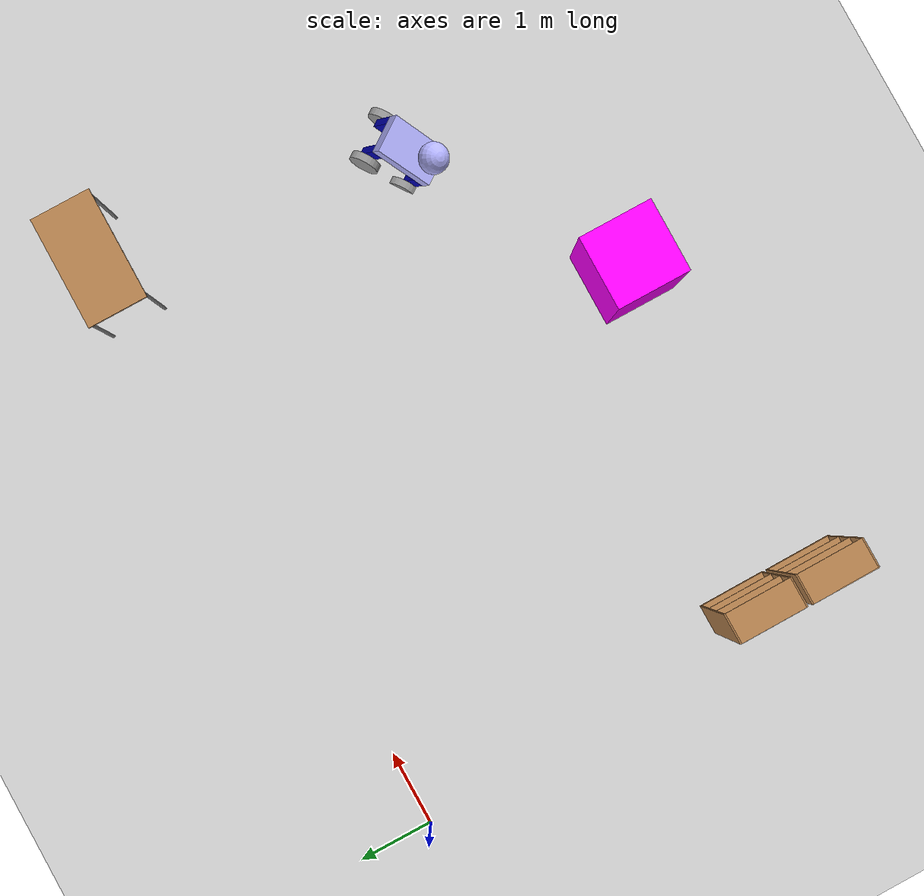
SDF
<sdf version="1.6">
 <world name="default">
  <model name="ground_plane">
   <static>1</static>
   <link name="link">
    <collision name="collision">
     <geometry><plane><normal>0 0 1</normal><size>100 100</size></plane></geometry>
     <surface><friction><ode><mu>100</mu><mu2>50</mu2></ode></friction></surface>
    </collision>
    <visual name="visual">
     <cast_shadows>0</cast_shadows>
     <geometry><plane><normal>0 0 1</normal><size>100 100</size></plane></geometry>
     <material>
      <script><uri>file://media/materials/scripts/gazebo.material</uri><name>Gazebo/Grey</name></script>
     </material>
    </visual>
   </link>
  </model>
  <model name="bookshelf">
   <static>1</static>
   <link name="link">
    <inertial><mass>1</mass></inertial>
    <collision name="back">
     <pose>0 0.005 0.6 0 -0 0</pose>
     <geometry><box><size>0.9 0.01 1.2</size></box></geometry>
    </collision>
    <visual name="visual1">
     <pose>0 0.005 0.6 0 -0 0</pose>
     <geometry><box><size>0.9 0.01 1.2</size></box></geometry>
     <material>
      <script><uri>file://media/materials/scripts/gazebo.material</uri><name>Gazebo/Wood</name></script>
     </material>
    </visual>
    <collision name="left_side">
     <pose>0.45 -0.195 0.6 0 -0 0</pose>
     <geometry><box><size>0.02 0.4 1.2</size></box></geometry>
    </collision>
    <visual name="visual2">
     <pose>0.45 -0.195 0.6 0 -0 0</pose>
     <geometry><box><size>0.02 0.4 1.2</size></box></geometry>
     <material>
      <script><uri>file://media/materials/scripts/gazebo.material</uri><name>Gazebo/Wood</name></script>
     </material>
    </visual>
    <collision name="right_side">
     <pose>-0.45 -0.195 0.6 0 -0 0</pose>
     <geometry><box><size>0.02 0.4 1.2</size></box></geometry>
    </collision>
    <visual name="visual3">
     <pose>-0.45 -0.195 0.6 0 -0 0</pose>
     <geometry><box><size>0.02 0.4 1.2</size></box></geometry>
     <material>
      <script><uri>file://media/materials/scripts/gazebo.material</uri><name>Gazebo/Wood</name></script>
     </material>
    </visual>
    <collision name="bottom">
     <pose>0 -0.195 0.03 0 -0 0</pose>
     <geometry><box><size>0.88 0.4 0.06</size></box></geometry>
    </collision>
    <visual name="visual4">
     <pose>0 -0.195 0.03 0 -0 0</pose>
     <geometry><box><size>0.88 0.4 0.06</size></box></geometry>
     <material>
      <script><uri>file://media/materials/scripts/gazebo.material</uri><name>Gazebo/Wood</name></script>
     </material>
    </visual>
    <collision name="top">
     <pose>0 -0.195 1.19 0 -0 0</pose>
     <geometry><box><size>0.88 0.4 0.02</size></box></geometry>
    </collision>
    <visual name="visual5">
     <pose>0 -0.195 1.19 0 -0 0</pose>
     <geometry><box><size>0.88 0.4 0.02</size></box></geometry>
     <material>
      <script><uri>file://media/materials/scripts/gazebo.material</uri><name>Gazebo/Wood</name></script>
     </material>
    </visual>
    <collision name="low_shelf">
     <pose>0 -0.195 0.43 0 -0 0</pose>
     <geometry><box><size>0.88 0.4 0.02</size></box></geometry>
    </collision>
    <visual name="visual6">
     <pose>0 -0.195 0.43 0 -0 0</pose>
     <geometry><box><size>0.88 0.4 0.02</size></box></geometry>
     <material>
      <script><uri>file://media/materials/scripts/gazebo.material</uri><name>Gazebo/Wood</name></script>
     </material>
    </visual>
    <collision name="high_shelf">
     <pose>0 -0.195 0.8 0 -0 0</pose>
     <geometry><box><size>0.88 0.4 0.02</size></box></geometry>
    </collision>
    <visual name="visual7">
     <pose>0 -0.195 0.8 0 -0 0</pose>
     <geometry><box><size>0.88 0.4 0.02</size></box></geometry>
     <material>
      <script><uri>file://media/materials/scripts/gazebo.material</uri><name>Gazebo/Wood</name></script>
     </material>
    </visual>
   </link>
   <pose>0.371342 -5.8152 0 0 -0 1.57628</pose>
  </model>
  <model name="bookshelf_clone">
   <static>1</static>
   <link name="link">
    <inertial><mass>1</mass></inertial>
    <collision name="back">
     <pose>0 0.005 0.6 0 -0 0</pose>
     <geometry><box><size>0.9 0.01 1.2</size></box></geometry>
    </collision>
    <visual name="visual1">
     <pose>0 0.005 0.6 0 -0 0</pose>
     <geometry><box><size>0.9 0.01 1.2</size></box></geometry>
     <material>
      <script><uri>file://media/materials/scripts/gazebo.material</uri><name>Gazebo/Wood</name></script>
     </material>
    </visual>
    <collision name="left_side">
     <pose>0.45 -0.195 0.6 0 -0 0</pose>
     <geometry><box><size>0.02 0.4 1.2</size></box></geometry>
    </collision>
    <visual name="visual2">
     <pose>0.45 -0.195 0.6 0 -0 0</pose>
     <geometry><box><size>0.02 0.4 1.2</size></box></geometry>
     <material>
      <script><uri>file://media/materials/scripts/gazebo.material</uri><name>Gazebo/Wood</name></script>
     </material>
    </visual>
    <collision name="right_side">
     <pose>-0.45 -0.195 0.6 0 -0 0</pose>
     <geometry><box><size>0.02 0.4 1.2</size></box></geometry>
    </collision>
    <visual name="visual3">
     <pose>-0.45 -0.195 0.6 0 -0 0</pose>
     <geometry><box><size>0.02 0.4 1.2</size></box></geometry>
     <material>
      <script><uri>file://media/materials/scripts/gazebo.material</uri><name>Gazebo/Wood</name></script>
     </material>
    </visual>
    <collision name="bottom">
     <pose>0 -0.195 0.03 0 -0 0</pose>
     <geometry><box><size>0.88 0.4 0.06</size></box></geometry>
    </collision>
    <visual name="visual4">
     <pose>0 -0.195 0.03 0 -0 0</pose>
     <geometry><box><size>0.88 0.4 0.06</size></box></geometry>
     <material>
      <script><uri>file://media/materials/scripts/gazebo.material</uri><name>Gazebo/Wood</name></script>
     </material>
    </visual>
    <collision name="top">
     <pose>0 -0.195 1.19 0 -0 0</pose>
     <geometry><box><size>0.88 0.4 0.02</size></box></geometry>
    </collision>
    <visual name="visual5">
     <pose>0 -0.195 1.19 0 -0 0</pose>
     <geometry><box><size>0.88 0.4 0.02</size></box></geometry>
     <material>
      <script><uri>file://media/materials/scripts/gazebo.material</uri><name>Gazebo/Wood</name></script>
     </material>
    </visual>
    <collision name="low_shelf">
     <pose>0 -0.195 0.43 0 -0 0</pose>
     <geometry><box><size>0.88 0.4 0.02</size></box></geometry>
    </collision>
    <visual name="visual6">
     <pose>0 -0.195 0.43 0 -0 0</pose>
     <geometry><box><size>0.88 0.4 0.02</size></box></geometry>
     <material>
      <script><uri>file://media/materials/scripts/gazebo.material</uri><name>Gazebo/Wood</name></script>
     </material>
    </visual>
    <collision name="high_shelf">
     <pose>0 -0.195 0.8 0 -0 0</pose>
     <geometry><box><size>0.88 0.4 0.02</size></box></geometry>
    </collision>
    <visual name="visual7">
     <pose>0 -0.195 0.8 0 -0 0</pose>
     <geometry><box><size>0.88 0.4 0.02</size></box></geometry>
     <material>
      <script><uri>file://media/materials/scripts/gazebo.material</uri><name>Gazebo/Wood</name></script>
     </material>
    </visual>
   </link>
   <pose>0.371025 -4.84526 0 0 -0 1.57628</pose>
  </model>
  <model name="table_0">
   <static>1</static>
   <link name="link">
    <collision name="surface">
     <pose>0 0 1 0 -0 0</pose>
     <geometry><box><size>1.5 0.8 0.03</size></box></geometry>
     <surface><friction><ode><mu>0.6</mu><mu2>0.6</mu2></ode></friction></surface>
    </collision>
    <visual name="visual1">
     <pose>0 0 1 0 -0 0</pose>
     <geometry><box><size>1.5 0.8 0.03</size></box></geometry>
     <material>
      <script><uri>file://media/materials/scripts/gazebo.material</uri><name>Gazebo/Wood</name></script>
     </material>
    </visual>
    <collision name="front_left_leg">
     <pose>0.68 0.38 0.5 0 -0 0</pose>
     <geometry><cylinder><radius>0.02</radius><length>1</length></cylinder></geometry>
    </collision>
    <visual name="front_left_leg">
     <pose>0.68 0.38 0.5 0 -0 0</pose>
     <geometry><cylinder><radius>0.02</radius><length>1</length></cylinder></geometry>
     <material>
      <script><uri>file://media/materials/scripts/gazebo.material</uri><name>Gazebo/Grey</name></script>
     </material>
    </visual>
    <collision name="front_right_leg">
     <pose>0.68 -0.38 0.5 0 -0 0</pose>
     <geometry><cylinder><radius>0.02</radius><length>1</length></cylinder></geometry>
    </collision>
    <visual name="front_right_leg">
     <pose>0.68 -0.38 0.5 0 -0 0</pose>
     <geometry><cylinder><radius>0.02</radius><length>1</length></cylinder></geometry>
     <material>
      <script><uri>file://media/materials/scripts/gazebo.material</uri><name>Gazebo/Grey</name></script>
     </material>
    </visual>
    <collision name="back_right_leg">
     <pose>-0.68 -0.38 0.5 0 -0 0</pose>
     <geometry><cylinder><radius>0.02</radius><length>1</length></cylinder></geometry>
    </collision>
    <visual name="back_right_leg">
     <pose>-0.68 -0.38 0.5 0 -0 0</pose>
     <geometry><cylinder><radius>0.02</radius><length>1</length></cylinder></geometry>
     <material>
      <script><uri>file://media/materials/scripts/gazebo.material</uri><name>Gazebo/Grey</name></script>
     </material>
    </visual>
    <collision name="back_left_leg">
     <pose>-0.68 0.38 0.5 0 -0 0</pose>
     <geometry><cylinder><radius>0.02</radius><length>1</length></cylinder></geometry>
    </collision>
    <visual name="back_left_leg">
     <pose>-0.68 0.38 0.5 0 -0 0</pose>
     <geometry><cylinder><radius>0.02</radius><length>1</length></cylinder></geometry>
     <material>
      <script><uri>file://media/materials/scripts/gazebo.material</uri><name>Gazebo/Grey</name></script>
     </material>
    </visual>
   </link>
   <pose>8.16 0.230612 0 0 -0 0</pose>
  </model>
  <model name="FourWheeledRobot_0">
   <link name="link_4">
    <pose>-0.345268 -0.160069 -0.216667 1.5707 -0 0</pose>
    <inertial>
     <mass>1</mass>
     <inertia><ixx>0.145833</ixx><ixy>0</ixy><ixz>0</ixz><iyy>0.145833</iyy><iyz>0</iyz><izz>0.125</izz></inertia>
    </inertial>
    <visual name="visual">
     <geometry><cylinder><radius>0.2</radius><length>0.1</length></cylinder></geometry>
     <material>
      <lighting>1</lighting>
      <script><uri>file://media/materials/scripts/gazebo.material</uri><name>Gazebo/Grey</name></script>
      <shader type="pixel"><normal_map>__default__</normal_map></shader>
      <ambient>0 0 0 1</ambient>
      <diffuse>0 0 0 1</diffuse>
      <specular>0 0 0 1</specular>
      <emissive>0 0 0 1</emissive>
     </material>
    </visual>
    <collision name="collision">
     <geometry><cylinder><radius>0.2</radius><length>0.1</length></cylinder></geometry>
     <surface>
      <friction>
       <ode><mu>1</mu><mu2>1</mu2><fdir1>0 0 0</fdir1><slip1>0</slip1><slip2>0</slip2></ode>
       <torsional>
        <coefficient>1</coefficient>
        <patch_radius>0</patch_radius>
        <surface_radius>0</surface_radius>
        <use_patch_radius>1</use_patch_radius>
        <ode><slip>0</slip></ode>
       </torsional>
      </friction>
      <bounce><restitution_coefficient>0</restitution_coefficient><threshold>1e+06</threshold></bounce>
      <contact>
       <collide_without_contact>0</collide_without_contact>
       <collide_without_contact_bitmask>1</collide_without_contact_bitmask>
       <collide_bitmask>1</collide_bitmask>
       <ode>
        <soft_cfm>0</soft_cfm>
        <soft_erp>0.2</soft_erp>
        <kp>1e+13</kp>
        <kd>1</kd>
        <max_vel>0.01</max_vel>
        <min_depth>0</min_depth>
       </ode>
       <bullet>
        <split_impulse>1</split_impulse>
        <split_impulse_penetration_threshold>-0.01</split_impulse_penetration_threshold>
        <soft_cfm>0</soft_cfm>
        <soft_erp>0.2</soft_erp>
        <kp>1e+13</kp>
        <kd>1</kd>
       </bullet>
      </contact>
     </surface>
    </collision>
   </link>
   <link name="link_4_clone">
    <pose>0.272232 -0.160069 -0.216668 1.5707 -0 0</pose>
    <inertial>
     <mass>1</mass>
     <inertia><ixx>0.145833</ixx><ixy>0</ixy><ixz>0</ixz><iyy>0.145833</iyy><iyz>0</iyz><izz>0.125</izz></inertia>
    </inertial>
    <visual name="visual">
     <geometry><cylinder><radius>0.2</radius><length>0.1</length></cylinder></geometry>
     <material>
      <lighting>1</lighting>
      <script><uri>file://media/materials/scripts/gazebo.material</uri><name>Gazebo/Grey</name></script>
      <shader type="pixel"><normal_map>__default__</normal_map></shader>
      <ambient>0 0 0 1</ambient>
      <diffuse>0 0 0 1</diffuse>
      <specular>0 0 0 1</specular>
      <emissive>0 0 0 1</emissive>
     </material>
    </visual>
    <collision name="collision">
     <geometry><cylinder><radius>0.2</radius><length>0.1</length></cylinder></geometry>
     <surface>
      <friction>
       <ode><mu>1</mu><mu2>1</mu2><fdir1>0 0 0</fdir1><slip1>0</slip1><slip2>0</slip2></ode>
       <torsional>
        <coefficient>1</coefficient>
        <patch_radius>0</patch_radius>
        <surface_radius>0</surface_radius>
        <use_patch_radius>1</use_patch_radius>
        <ode><slip>0</slip></ode>
       </torsional>
      </friction>
      <bounce><restitution_coefficient>0</restitution_coefficient><threshold>1e+06</threshold></bounce>
      <contact>
       <collide_without_contact>0</collide_without_contact>
       <collide_without_contact_bitmask>1</collide_without_contact_bitmask>
       <collide_bitmask>1</collide_bitmask>
       <ode>
        <soft_cfm>0</soft_cfm>
        <soft_erp>0.2</soft_erp>
        <kp>1e+13</kp>
        <kd>1</kd>
        <max_vel>0.01</max_vel>
        <min_depth>0</min_depth>
       </ode>
       <bullet>
        <split_impulse>1</split_impulse>
        <split_impulse_penetration_threshold>-0.01</split_impulse_penetration_threshold>
        <soft_cfm>0</soft_cfm>
        <soft_erp>0.2</soft_erp>
        <kp>1e+13</kp>
        <kd>1</kd>
       </bullet>
      </contact>
     </surface>
    </collision>
   </link>
   <link name="link_4_clone_0">
    <pose>-0.377768 0.43997 -0.216667 1.5707 -0 0</pose>
    <inertial>
     <mass>1</mass>
     <inertia><ixx>0.145833</ixx><ixy>0</ixy><ixz>0</ixz><iyy>0.145833</iyy><iyz>0</iyz><izz>0.125</izz></inertia>
    </inertial>
    <visual name="visual">
     <geometry><cylinder><radius>0.2</radius><length>0.1</length></cylinder></geometry>
     <material>
      <lighting>1</lighting>
      <script><uri>file://media/materials/scripts/gazebo.material</uri><name>Gazebo/Grey</name></script>
      <shader type="pixel"><normal_map>__default__</normal_map></shader>
      <ambient>0 0 0 1</ambient>
      <diffuse>0 0 0 1</diffuse>
      <specular>0 0 0 1</specular>
      <emissive>0 0 0 1</emissive>
     </material>
    </visual>
    <collision name="collision">
     <geometry><cylinder><radius>0.2</radius><length>0.1</length></cylinder></geometry>
     <surface>
      <friction>
       <ode><mu>1</mu><mu2>1</mu2><fdir1>0 0 0</fdir1><slip1>0</slip1><slip2>0</slip2></ode>
       <torsional>
        <coefficient>1</coefficient>
        <patch_radius>0</patch_radius>
        <surface_radius>0</surface_radius>
        <use_patch_radius>1</use_patch_radius>
        <ode><slip>0</slip></ode>
       </torsional>
      </friction>
      <bounce><restitution_coefficient>0</restitution_coefficient><threshold>1e+06</threshold></bounce>
      <contact>
       <collide_without_contact>0</collide_without_contact>
       <collide_without_contact_bitmask>1</collide_without_contact_bitmask>
       <collide_bitmask>1</collide_bitmask>
       <ode>
        <soft_cfm>0</soft_cfm>
        <soft_erp>0.2</soft_erp>
        <kp>1e+13</kp>
        <kd>1</kd>
        <max_vel>0.01</max_vel>
        <min_depth>0</min_depth>
       </ode>
       <bullet>
        <split_impulse>1</split_impulse>
        <split_impulse_penetration_threshold>-0.01</split_impulse_penetration_threshold>
        <soft_cfm>0</soft_cfm>
        <soft_erp>0.2</soft_erp>
        <kp>1e+13</kp>
        <kd>1</kd>
       </bullet>
      </contact>
     </surface>
    </collision>
   </link>
   <link name="link_4_clone_1">
    <pose>0.272232 0.43997 -0.216667 1.5707 -0 0</pose>
    <inertial>
     <mass>1</mass>
     <inertia><ixx>0.145833</ixx><ixy>0</ixy><ixz>0</ixz><iyy>0.145833</iyy><iyz>0</iyz><izz>0.125</izz></inertia>
    </inertial>
    <visual name="visual">
     <geometry><cylinder><radius>0.2</radius><length>0.1</length></cylinder></geometry>
     <material>
      <lighting>1</lighting>
      <script><uri>file://media/materials/scripts/gazebo.material</uri><name>Gazebo/Grey</name></script>
      <shader type="pixel"><normal_map>__default__</normal_map></shader>
      <ambient>0 0 0 1</ambient>
      <diffuse>0 0 0 1</diffuse>
      <specular>0 0 0 1</specular>
      <emissive>0 0 0 1</emissive>
     </material>
    </visual>
    <collision name="collision">
     <geometry><cylinder><radius>0.2</radius><length>0.1</length></cylinder></geometry>
     <surface>
      <friction>
       <ode><mu>1</mu><mu2>1</mu2><fdir1>0 0 0</fdir1><slip1>0</slip1><slip2>0</slip2></ode>
       <torsional>
        <coefficient>1</coefficient>
        <patch_radius>0</patch_radius>
        <surface_radius>0</surface_radius>
        <use_patch_radius>1</use_patch_radius>
        <ode><slip>0</slip></ode>
       </torsional>
      </friction>
      <bounce><restitution_coefficient>0</restitution_coefficient><threshold>1e+06</threshold></bounce>
      <contact>
       <collide_without_contact>0</collide_without_contact>
       <collide_without_contact_bitmask>1</collide_without_contact_bitmask>
       <collide_bitmask>1</collide_bitmask>
       <ode>
        <soft_cfm>0</soft_cfm>
        <soft_erp>0.2</soft_erp>
        <kp>1e+13</kp>
        <kd>1</kd>
        <max_vel>0.01</max_vel>
        <min_depth>0</min_depth>
       </ode>
       <bullet>
        <split_impulse>1</split_impulse>
        <split_impulse_penetration_threshold>-0.01</split_impulse_penetration_threshold>
        <soft_cfm>0</soft_cfm>
        <soft_erp>0.2</soft_erp>
        <kp>1e+13</kp>
        <kd>1</kd>
       </bullet>
      </contact>
     </surface>
    </collision>
   </link>
   <link name="link_5">
    <pose>-0.377768 -0.060049 -0.016667 0 -0 0</pose>
    <inertial>
     <mass>1</mass>
     <inertia>
      <ixx>0.166667</ixx>
      <ixy>0</ixy>
      <ixz>0</ixz>
      <iyy>0.166667</iyy>
      <iyz>0</iyz>
      <izz>0.166667</izz>
     </inertia>
    </inertial>
    <visual name="visual">
     <geometry><box><size>0.15 0.1 0.4</size></box></geometry>
     <material>
      <lighting>1</lighting>
      <script><uri>file://media/materials/scripts/gazebo.material</uri><name>Gazebo/Grey</name></script>
      <shader type="pixel"><normal_map>__default__</normal_map></shader>
      <ambient>0 0 1 1</ambient>
      <diffuse>0 0 0.7 1</diffuse>
      <specular>0 0 0.01 1</specular>
      <emissive>0 0 0 1</emissive>
     </material>
    </visual>
    <collision name="collision">
     <geometry><box><size>0.15 0.1 0.4</size></box></geometry>
     <surface>
      <friction>
       <ode><mu>1</mu><mu2>1</mu2><fdir1>0 0 0</fdir1><slip1>0</slip1><slip2>0</slip2></ode>
       <torsional>
        <coefficient>1</coefficient>
        <patch_radius>0</patch_radius>
        <surface_radius>0</surface_radius>
        <use_patch_radius>1</use_patch_radius>
        <ode><slip>0</slip></ode>
       </torsional>
      </friction>
      <bounce><restitution_coefficient>0</restitution_coefficient><threshold>1e+06</threshold></bounce>
      <contact>
       <collide_without_contact>0</collide_without_contact>
       <collide_without_contact_bitmask>1</collide_without_contact_bitmask>
       <collide_bitmask>1</collide_bitmask>
       <ode>
        <soft_cfm>0</soft_cfm>
        <soft_erp>0.2</soft_erp>
        <kp>1e+13</kp>
        <kd>1</kd>
        <max_vel>0.01</max_vel>
        <min_depth>0</min_depth>
       </ode>
       <bullet>
        <split_impulse>1</split_impulse>
        <split_impulse_penetration_threshold>-0.01</split_impulse_penetration_threshold>
        <soft_cfm>0</soft_cfm>
        <soft_erp>0.2</soft_erp>
        <kp>1e+13</kp>
        <kd>1</kd>
       </bullet>
      </contact>
     </surface>
    </collision>
   </link>
   <link name="link_5_clone">
    <pose>-0.377768 0.339951 -0.016667 0 -0 0</pose>
    <inertial>
     <mass>1</mass>
     <inertia>
      <ixx>0.166667</ixx>
      <ixy>0</ixy>
      <ixz>0</ixz>
      <iyy>0.166667</iyy>
      <iyz>0</iyz>
      <izz>0.166667</izz>
     </inertia>
    </inertial>
    <visual name="visual">
     <geometry><box><size>0.15 0.1 0.4</size></box></geometry>
     <material>
      <lighting>1</lighting>
      <script><uri>file://media/materials/scripts/gazebo.material</uri><name>Gazebo/Grey</name></script>
      <shader type="pixel"><normal_map>__default__</normal_map></shader>
      <ambient>0 0 1 1</ambient>
      <diffuse>0 0 0.7 1</diffuse>
      <specular>0 0 0.01 1</specular>
      <emissive>0 0 0 1</emissive>
     </material>
    </visual>
    <collision name="collision">
     <geometry><box><size>0.15 0.1 0.4</size></box></geometry>
     <surface>
      <friction>
       <ode><mu>1</mu><mu2>1</mu2><fdir1>0 0 0</fdir1><slip1>0</slip1><slip2>0</slip2></ode>
       <torsional>
        <coefficient>1</coefficient>
        <patch_radius>0</patch_radius>
        <surface_radius>0</surface_radius>
        <use_patch_radius>1</use_patch_radius>
        <ode><slip>0</slip></ode>
       </torsional>
      </friction>
      <bounce><restitution_coefficient>0</restitution_coefficient><threshold>1e+06</threshold></bounce>
      <contact>
       <collide_without_contact>0</collide_without_contact>
       <collide_without_contact_bitmask>1</collide_without_contact_bitmask>
       <collide_bitmask>1</collide_bitmask>
       <ode>
        <soft_cfm>0</soft_cfm>
        <soft_erp>0.2</soft_erp>
        <kp>1e+13</kp>
        <kd>1</kd>
        <max_vel>0.01</max_vel>
        <min_depth>0</min_depth>
       </ode>
       <bullet>
        <split_impulse>1</split_impulse>
        <split_impulse_penetration_threshold>-0.01</split_impulse_penetration_threshold>
        <soft_cfm>0</soft_cfm>
        <soft_erp>0.2</soft_erp>
        <kp>1e+13</kp>
        <kd>1</kd>
       </bullet>
      </contact>
     </surface>
    </collision>
   </link>
   <link name="link_5_clone_0">
    <pose>0.272232 -0.060049 -0.016667 0 -0 0</pose>
    <inertial>
     <mass>1</mass>
     <inertia>
      <ixx>0.166667</ixx>
      <ixy>0</ixy>
      <ixz>0</ixz>
      <iyy>0.166667</iyy>
      <iyz>0</iyz>
      <izz>0.166667</izz>
     </inertia>
    </inertial>
    <visual name="visual">
     <geometry><box><size>0.15 0.1 0.4</size></box></geometry>
     <material>
      <lighting>1</lighting>
      <script><uri>file://media/materials/scripts/gazebo.material</uri><name>Gazebo/Grey</name></script>
      <shader type="pixel"><normal_map>__default__</normal_map></shader>
      <ambient>0 0 1 1</ambient>
      <diffuse>0 0 0.7 1</diffuse>
      <specular>0 0 0.01 1</specular>
      <emissive>0 0 0 1</emissive>
     </material>
    </visual>
    <collision name="collision">
     <geometry><box><size>0.15 0.1 0.4</size></box></geometry>
     <surface>
      <friction>
       <ode><mu>1</mu><mu2>1</mu2><fdir1>0 0 0</fdir1><slip1>0</slip1><slip2>0</slip2></ode>
       <torsional>
        <coefficient>1</coefficient>
        <patch_radius>0</patch_radius>
        <surface_radius>0</surface_radius>
        <use_patch_radius>1</use_patch_radius>
        <ode><slip>0</slip></ode>
       </torsional>
      </friction>
      <bounce><restitution_coefficient>0</restitution_coefficient><threshold>1e+06</threshold></bounce>
      <contact>
       <collide_without_contact>0</collide_without_contact>
       <collide_without_contact_bitmask>1</collide_without_contact_bitmask>
       <collide_bitmask>1</collide_bitmask>
       <ode>
        <soft_cfm>0</soft_cfm>
        <soft_erp>0.2</soft_erp>
        <kp>1e+13</kp>
        <kd>1</kd>
        <max_vel>0.01</max_vel>
        <min_depth>0</min_depth>
       </ode>
       <bullet>
        <split_impulse>1</split_impulse>
        <split_impulse_penetration_threshold>-0.01</split_impulse_penetration_threshold>
        <soft_cfm>0</soft_cfm>
        <soft_erp>0.2</soft_erp>
        <kp>1e+13</kp>
        <kd>1</kd>
       </bullet>
      </contact>
     </surface>
    </collision>
   </link>
   <link name="link_5_clone_1">
    <pose>0.272232 0.339951 -0.016667 0 -0 0</pose>
    <inertial>
     <mass>1</mass>
     <inertia>
      <ixx>0.166667</ixx>
      <ixy>0</ixy>
      <ixz>0</ixz>
      <iyy>0.166667</iyy>
      <iyz>0</iyz>
      <izz>0.166667</izz>
     </inertia>
    </inertial>
    <visual name="visual">
     <geometry><box><size>0.15 0.1 0.4</size></box></geometry>
     <material>
      <lighting>1</lighting>
      <script><uri>file://media/materials/scripts/gazebo.material</uri><name>Gazebo/Grey</name></script>
      <shader type="pixel"><normal_map>__default__</normal_map></shader>
      <ambient>0 0 1 1</ambient>
      <diffuse>0 0 0.7 1</diffuse>
      <specular>0 0 0.01 1</specular>
      <emissive>0 0 0 1</emissive>
     </material>
    </visual>
    <collision name="collision">
     <geometry><box><size>0.15 0.1 0.4</size></box></geometry>
     <surface>
      <friction>
       <ode><mu>1</mu><mu2>1</mu2><fdir1>0 0 0</fdir1><slip1>0</slip1><slip2>0</slip2></ode>
       <torsional>
        <coefficient>1</coefficient>
        <patch_radius>0</patch_radius>
        <surface_radius>0</surface_radius>
        <use_patch_radius>1</use_patch_radius>
        <ode><slip>0</slip></ode>
       </torsional>
      </friction>
      <bounce><restitution_coefficient>0</restitution_coefficient><threshold>1e+06</threshold></bounce>
      <contact>
       <collide_without_contact>0</collide_without_contact>
       <collide_without_contact_bitmask>1</collide_without_contact_bitmask>
       <collide_bitmask>1</collide_bitmask>
       <ode>
        <soft_cfm>0</soft_cfm>
        <soft_erp>0.2</soft_erp>
        <kp>1e+13</kp>
        <kd>1</kd>
        <max_vel>0.01</max_vel>
        <min_depth>0</min_depth>
       </ode>
       <bullet>
        <split_impulse>1</split_impulse>
        <split_impulse_penetration_threshold>-0.01</split_impulse_penetration_threshold>
        <soft_cfm>0</soft_cfm>
        <soft_erp>0.2</soft_erp>
        <kp>1e+13</kp>
        <kd>1</kd>
       </bullet>
      </contact>
     </surface>
    </collision>
   </link>
   <link name="link_6">
    <pose>-0.052768 0.139951 0.283333 0 -0 0</pose>
    <inertial>
     <mass>1</mass>
     <inertia>
      <ixx>0.166667</ixx>
      <ixy>0</ixy>
      <ixz>0</ixz>
      <iyy>0.166667</iyy>
      <iyz>0</iyz>
      <izz>0.166667</izz>
     </inertia>
    </inertial>
    <visual name="visual">
     <geometry><box><size>0.8 0.5 0.2</size></box></geometry>
     <material>
      <lighting>1</lighting>
      <script><uri>file://media/materials/scripts/gazebo.material</uri><name>Gazebo/Grey</name></script>
      <shader type="pixel"><normal_map>__default__</normal_map></shader>
      <ambient>0.3 0.3 1 1</ambient>
      <diffuse>0.7 0.7 1 1</diffuse>
      <specular>0.01 0.01 0.05 1</specular>
      <emissive>0 0 0 1</emissive>
     </material>
    </visual>
    <collision name="collision">
     <geometry><box><size>0.8 0.5 0.2</size></box></geometry>
     <surface>
      <friction>
       <ode><mu>1</mu><mu2>1</mu2><fdir1>0 0 0</fdir1><slip1>0</slip1><slip2>0</slip2></ode>
       <torsional>
        <coefficient>1</coefficient>
        <patch_radius>0</patch_radius>
        <surface_radius>0</surface_radius>
        <use_patch_radius>1</use_patch_radius>
        <ode><slip>0</slip></ode>
       </torsional>
      </friction>
      <bounce><restitution_coefficient>0</restitution_coefficient><threshold>1e+06</threshold></bounce>
      <contact>
       <collide_without_contact>0</collide_without_contact>
       <collide_without_contact_bitmask>1</collide_without_contact_bitmask>
       <collide_bitmask>1</collide_bitmask>
       <ode>
        <soft_cfm>0</soft_cfm>
        <soft_erp>0.2</soft_erp>
        <kp>1e+13</kp>
        <kd>1</kd>
        <max_vel>0.01</max_vel>
        <min_depth>0</min_depth>
       </ode>
       <bullet>
        <split_impulse>1</split_impulse>
        <split_impulse_penetration_threshold>-0.01</split_impulse_penetration_threshold>
        <soft_cfm>0</soft_cfm>
        <soft_erp>0.2</soft_erp>
        <kp>1e+13</kp>
        <kd>1</kd>
       </bullet>
      </contact>
     </surface>
    </collision>
   </link>
   <link name="link_7">
    <pose>0.147232 0.139951 0.618344 0 -0 0</pose>
    <inertial>
     <mass>1</mass>
     <inertia><ixx>0.1</ixx><ixy>0</ixy><ixz>0</ixz><iyy>0.1</iyy><iyz>0</iyz><izz>0.1</izz></inertia>
    </inertial>
    <visual name="visual">
     <geometry><sphere><radius>0.2</radius></sphere></geometry>
     <material>
      <lighting>1</lighting>
      <script><uri>file://media/materials/scripts/gazebo.material</uri><name>Gazebo/Grey</name></script>
      <shader type="pixel"><normal_map>__default__</normal_map></shader>
      <ambient>0.3 0.3 1 1</ambient>
      <diffuse>0.7 0.7 1 1</diffuse>
      <specular>0.01 0.01 0.05 1</specular>
      <emissive>0 0 0 1</emissive>
     </material>
    </visual>
    <collision name="collision">
     <geometry><sphere><radius>0.2</radius></sphere></geometry>
     <surface>
      <friction>
       <ode><mu>1</mu><mu2>1</mu2><fdir1>0 0 0</fdir1><slip1>0</slip1><slip2>0</slip2></ode>
       <torsional>
        <coefficient>1</coefficient>
        <patch_radius>0</patch_radius>
        <surface_radius>0</surface_radius>
        <use_patch_radius>1</use_patch_radius>
        <ode><slip>0</slip></ode>
       </torsional>
      </friction>
      <bounce><restitution_coefficient>0</restitution_coefficient><threshold>1e+06</threshold></bounce>
      <contact>
       <collide_without_contact>0</collide_without_contact>
       <collide_without_contact_bitmask>1</collide_without_contact_bitmask>
       <collide_bitmask>1</collide_bitmask>
       <ode>
        <soft_cfm>0</soft_cfm>
        <soft_erp>0.2</soft_erp>
        <kp>1e+13</kp>
        <kd>1</kd>
        <max_vel>0.01</max_vel>
        <min_depth>0</min_depth>
       </ode>
       <bullet>
        <split_impulse>1</split_impulse>
        <split_impulse_penetration_threshold>-0.01</split_impulse_penetration_threshold>
        <soft_cfm>0</soft_cfm>
        <soft_erp>0.2</soft_erp>
        <kp>1e+13</kp>
        <kd>1</kd>
       </bullet>
      </contact>
     </surface>
    </collision>
   </link>
   <joint name="link_5_JOINT_1" type="revolute">
    <parent>link_5</parent>
    <child>link_4</child>
    <axis>
     <xyz>0 0 1</xyz>
     <use_parent_model_frame>0</use_parent_model_frame>
     <limit>
      <lower>-1.79769e+308</lower>
      <upper>1.79769e+308</upper>
      <effort>-1</effort>
      <velocity>-1</velocity>
     </limit>
     <dynamics>
      <spring_reference>0</spring_reference>
      <spring_stiffness>0</spring_stiffness>
      <damping>0</damping>
      <friction>0</friction>
     </dynamics>
    </axis>
    <physics>
     <ode><limit><cfm>0</cfm><erp>0.2</erp></limit><suspension><cfm>0</cfm><erp>0.2</erp></suspension></ode>
    </physics>
   </joint>
   <joint name="link_5_clone_0_JOINT_7" type="revolute">
    <parent>link_5_clone_0</parent>
    <child>link_4_clone</child>
    <axis>
     <xyz>0 0 1</xyz>
     <use_parent_model_frame>0</use_parent_model_frame>
     <limit>
      <lower>-1.79769e+308</lower>
      <upper>1.79769e+308</upper>
      <effort>-1</effort>
      <velocity>-1</velocity>
     </limit>
     <dynamics>
      <spring_reference>0</spring_reference>
      <spring_stiffness>0</spring_stiffness>
      <damping>0</damping>
      <friction>0</friction>
     </dynamics>
    </axis>
    <physics>
     <ode><limit><cfm>0</cfm><erp>0.2</erp></limit><suspension><cfm>0</cfm><erp>0.2</erp></suspension></ode>
    </physics>
   </joint>
   <joint name="link_5_clone_1_JOINT_9" type="revolute">
    <parent>link_5_clone_1</parent>
    <child>link_4_clone_1</child>
    <axis>
     <xyz>0 0 1</xyz>
     <use_parent_model_frame>0</use_parent_model_frame>
     <limit>
      <lower>-1.79769e+308</lower>
      <upper>1.79769e+308</upper>
      <effort>-1</effort>
      <velocity>-1</velocity>
     </limit>
     <dynamics>
      <spring_reference>0</spring_reference>
      <spring_stiffness>0</spring_stiffness>
      <damping>0</damping>
      <friction>0</friction>
     </dynamics>
    </axis>
    <physics>
     <ode><limit><cfm>0</cfm><erp>0.2</erp></limit><suspension><cfm>0</cfm><erp>0.2</erp></suspension></ode>
    </physics>
   </joint>
   <joint name="link_5_clone_JOINT_8" type="revolute">
    <parent>link_5_clone</parent>
    <child>link_4_clone_0</child>
    <axis>
     <xyz>0 0 1</xyz>
     <use_parent_model_frame>0</use_parent_model_frame>
     <limit>
      <lower>-1.79769e+308</lower>
      <upper>1.79769e+308</upper>
      <effort>-1</effort>
      <velocity>-1</velocity>
     </limit>
     <dynamics>
      <spring_reference>0</spring_reference>
      <spring_stiffness>0</spring_stiffness>
      <damping>0</damping>
      <friction>0</friction>
     </dynamics>
    </axis>
    <physics>
     <ode><limit><cfm>0</cfm><erp>0.2</erp></limit><suspension><cfm>0</cfm><erp>0.2</erp></suspension></ode>
    </physics>
   </joint>
   <joint name="link_6_JOINT_3" type="fixed">
    <parent>link_6</parent>
    <child>link_5</child>
    <physics>
     <ode><limit><cfm>0</cfm><erp>0.2</erp></limit><suspension><cfm>0</cfm><erp>0.2</erp></suspension></ode>
    </physics>
   </joint>
   <joint name="link_6_JOINT_4" type="fixed">
    <parent>link_6</parent>
    <child>link_5_clone</child>
    <physics>
     <ode><limit><cfm>0</cfm><erp>0.2</erp></limit><suspension><cfm>0</cfm><erp>0.2</erp></suspension></ode>
    </physics>
   </joint>
   <joint name="link_6_JOINT_5" type="fixed">
    <parent>link_6</parent>
    <child>link_5_clone_0</child>
    <physics>
     <ode><limit><cfm>0</cfm><erp>0.2</erp></limit><suspension><cfm>0</cfm><erp>0.2</erp></suspension></ode>
    </physics>
   </joint>
   <joint name="link_6_JOINT_6" type="fixed">
    <parent>link_6</parent>
    <child>link_5_clone_1</child>
    <physics>
     <ode><limit><cfm>0</cfm><erp>0.2</erp></limit><suspension><cfm>0</cfm><erp>0.2</erp></suspension></ode>
    </physics>
   </joint>
   <joint name="link_7_JOINT_15" type="fixed">
    <parent>link_7</parent>
    <child>link_6</child>
    <physics>
     <ode><limit><cfm>0</cfm><erp>0.2</erp></limit><suspension><cfm>0</cfm><erp>0.2</erp></suspension></ode>
    </physics>
   </joint>
   <static>0</static>
   <pose>7.61401 -3.69918 0.211667 -1.5e-05 0.5318 -2.52644</pose>
  </model>
  <model name="unit_box">
   <link name="link">
    <inertial>
     <mass>1</mass>
     <inertia>
      <ixx>0.166667</ixx>
      <ixy>0</ixy>
      <ixz>0</ixz>
      <iyy>0.166667</iyy>
      <iyz>0</iyz>
      <izz>0.166667</izz>
     </inertia>
    </inertial>
    <visual name="visual">
     <geometry><box><size>1 1 1</size></box></geometry>
     <material>
      <script><name>Gazebo/Grey</name><uri>file://media/materials/scripts/gazebo.material</uri></script>
      <shader type="pixel"><normal_map>__default__</normal_map></shader>
      <ambient>1 0 1 1</ambient>
      <diffuse>0.7 0.7 0.7 1</diffuse>
      <specular>0.01 0.01 0.01 1</specular>
      <emissive>0 0 0 1</emissive>
     </material>
    </visual>
    <collision name="collision">
     <geometry><box><size>1 1 1</size></box></geometry>
     <surface>
      <friction>
       <ode><mu>1</mu><mu2>1</mu2><fdir1>0 0 0</fdir1><slip1>0</slip1><slip2>0</slip2></ode>
       <torsional>
        <coefficient>1</coefficient>
        <patch_radius>0</patch_radius>
        <surface_radius>0</surface_radius>
        <use_patch_radius>1</use_patch_radius>
        <ode><slip>0</slip></ode>
       </torsional>
      </friction>
      <bounce><restitution_coefficient>0</restitution_coefficient><threshold>1e+06</threshold></bounce>
      <contact>
       <collide_without_contact>0</collide_without_contact>
       <collide_without_contact_bitmask>1</collide_without_contact_bitmask>
       <collide_bitmask>1</collide_bitmask>
       <ode>
        <soft_cfm>0</soft_cfm>
        <soft_erp>0.2</soft_erp>
        <kp>1e+13</kp>
        <kd>1</kd>
        <max_vel>0.01</max_vel>
        <min_depth>0</min_depth>
       </ode>
       <bullet>
        <split_impulse>1</split_impulse>
        <split_impulse_penetration_threshold>-0.01</split_impulse_penetration_threshold>
        <soft_cfm>0</soft_cfm>
        <soft_erp>0.2</soft_erp>
        <kp>1e+13</kp>
        <kd>1</kd>
       </bullet>
      </contact>
     </surface>
    </collision>
   </link>
   <static>0</static>
   <pose>5.04019 -5.59246 0.5 0 -0 0</pose>
  </model>
 </world>
</sdf>
